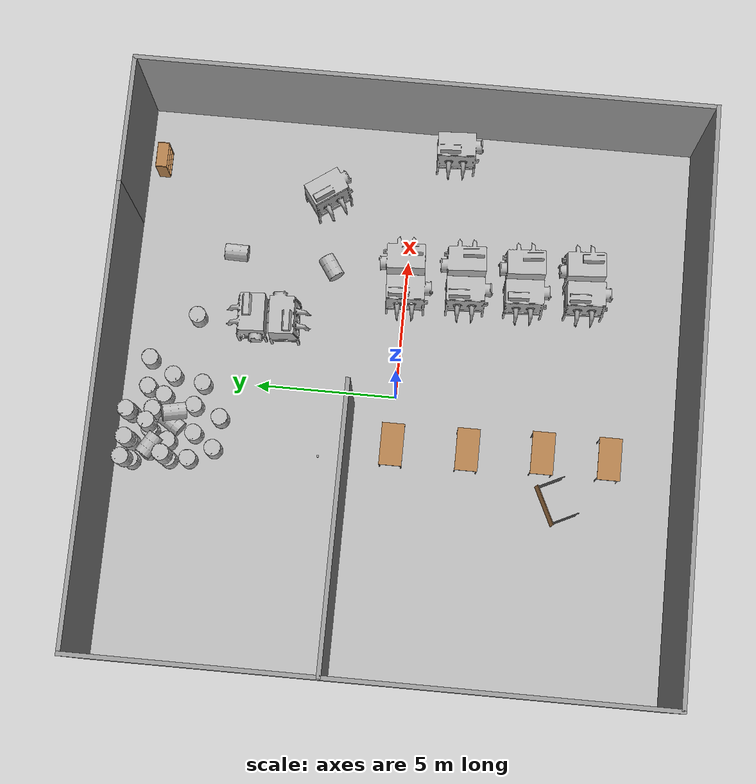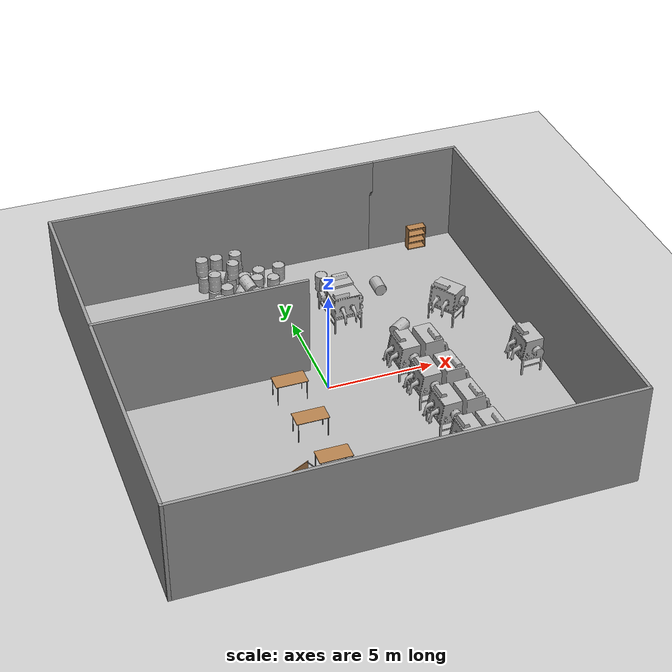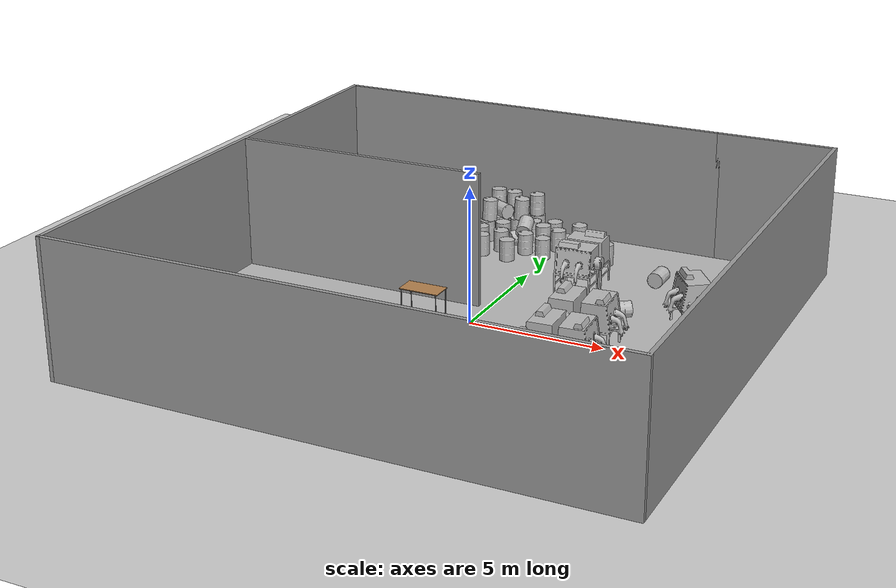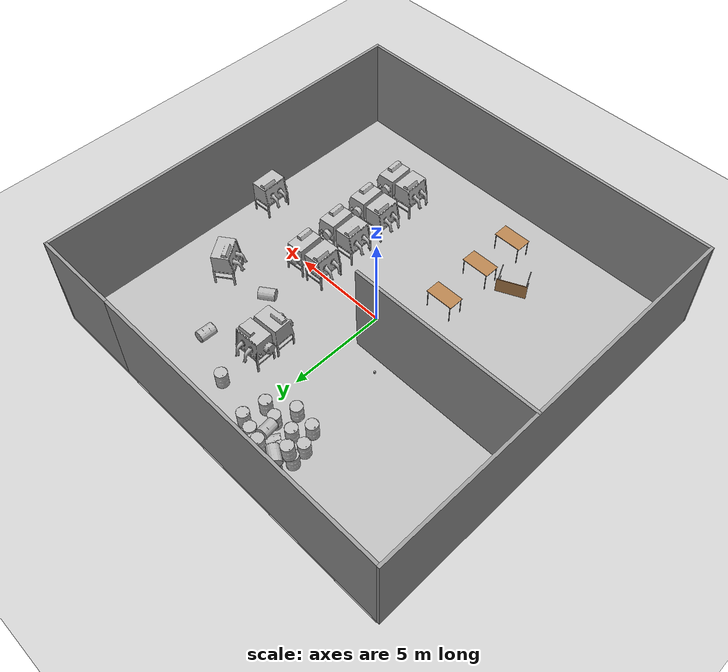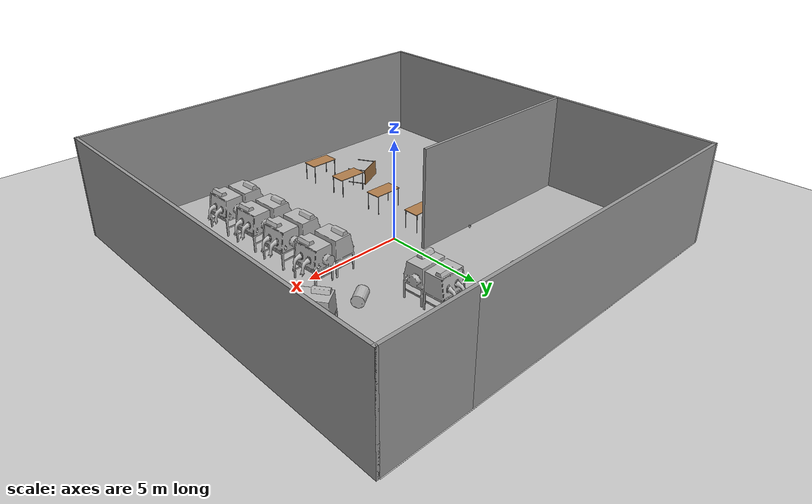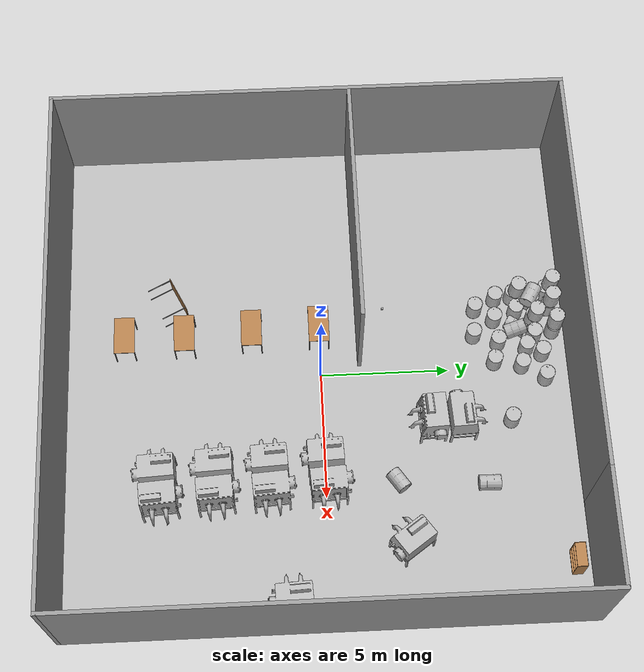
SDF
<sdf version="1.7">
 <world name="default">
  <model name="ground_plane">
   <static>1</static>
   <link name="link">
    <collision name="collision">
     <geometry><plane><normal>0 0 1</normal><size>100 100</size></plane></geometry>
     <surface><friction><ode><mu>100</mu><mu2>50</mu2></ode></friction></surface>
    </collision>
    <visual name="visual">
     <cast_shadows>0</cast_shadows>
     <geometry><plane><normal>0 0 1</normal><size>100 100</size></plane></geometry>
     <material>
      <script><uri>file://media/materials/scripts/gazebo.material</uri><name>Gazebo/Grey</name></script>
     </material>
    </visual>
   </link>
  </model>
  <model name="table_clone_1">
   <static>1</static>
   <link name="link">
    <collision name="surface">
     <pose>0 0 1 0 -0 0</pose>
     <geometry><box><size>1.5 0.8 0.03</size></box></geometry>
     <surface><friction><ode><mu>0.6</mu><mu2>0.6</mu2></ode></friction></surface>
    </collision>
    <visual name="visual1">
     <pose>0 0 1 0 -0 0</pose>
     <geometry><box><size>1.5 0.8 0.03</size></box></geometry>
     <material>
      <script><uri>file://media/materials/scripts/gazebo.material</uri><name>Gazebo/Wood</name></script>
     </material>
    </visual>
    <collision name="front_left_leg">
     <pose>0.68 0.38 0.5 0 -0 0</pose>
     <geometry><cylinder><radius>0.02</radius><length>1</length></cylinder></geometry>
    </collision>
    <visual name="front_left_leg">
     <pose>0.68 0.38 0.5 0 -0 0</pose>
     <geometry><cylinder><radius>0.02</radius><length>1</length></cylinder></geometry>
     <material>
      <script><uri>file://media/materials/scripts/gazebo.material</uri><name>Gazebo/Grey</name></script>
     </material>
    </visual>
    <collision name="front_right_leg">
     <pose>0.68 -0.38 0.5 0 -0 0</pose>
     <geometry><cylinder><radius>0.02</radius><length>1</length></cylinder></geometry>
    </collision>
    <visual name="front_right_leg">
     <pose>0.68 -0.38 0.5 0 -0 0</pose>
     <geometry><cylinder><radius>0.02</radius><length>1</length></cylinder></geometry>
     <material>
      <script><uri>file://media/materials/scripts/gazebo.material</uri><name>Gazebo/Grey</name></script>
     </material>
    </visual>
    <collision name="back_right_leg">
     <pose>-0.68 -0.38 0.5 0 -0 0</pose>
     <geometry><cylinder><radius>0.02</radius><length>1</length></cylinder></geometry>
    </collision>
    <visual name="back_right_leg">
     <pose>-0.68 -0.38 0.5 0 -0 0</pose>
     <geometry><cylinder><radius>0.02</radius><length>1</length></cylinder></geometry>
     <material>
      <script><uri>file://media/materials/scripts/gazebo.material</uri><name>Gazebo/Grey</name></script>
     </material>
    </visual>
    <collision name="back_left_leg">
     <pose>-0.68 0.38 0.5 0 -0 0</pose>
     <geometry><cylinder><radius>0.02</radius><length>1</length></cylinder></geometry>
    </collision>
    <visual name="back_left_leg">
     <pose>-0.68 0.38 0.5 0 -0 0</pose>
     <geometry><cylinder><radius>0.02</radius><length>1</length></cylinder></geometry>
     <material>
      <script><uri>file://media/materials/scripts/gazebo.material</uri><name>Gazebo/Grey</name></script>
     </material>
    </visual>
   </link>
   <pose>-1.76077 -2.66222 0 0 -0 0</pose>
  </model>
  <model name="table_clone_5">
   <static>1</static>
   <link name="link">
    <collision name="surface">
     <pose>0 0 1 0 -0 0</pose>
     <geometry><box><size>1.5 0.8 0.03</size></box></geometry>
     <surface><friction><ode><mu>0.6</mu><mu2>0.6</mu2></ode></friction></surface>
    </collision>
    <visual name="visual1">
     <pose>0 0 1 0 -0 0</pose>
     <geometry><box><size>1.5 0.8 0.03</size></box></geometry>
     <material>
      <script><uri>file://media/materials/scripts/gazebo.material</uri><name>Gazebo/Wood</name></script>
     </material>
    </visual>
    <collision name="front_left_leg">
     <pose>0.68 0.38 0.5 0 -0 0</pose>
     <geometry><cylinder><radius>0.02</radius><length>1</length></cylinder></geometry>
    </collision>
    <visual name="front_left_leg">
     <pose>0.68 0.38 0.5 0 -0 0</pose>
     <geometry><cylinder><radius>0.02</radius><length>1</length></cylinder></geometry>
     <material>
      <script><uri>file://media/materials/scripts/gazebo.material</uri><name>Gazebo/Grey</name></script>
     </material>
    </visual>
    <collision name="front_right_leg">
     <pose>0.68 -0.38 0.5 0 -0 0</pose>
     <geometry><cylinder><radius>0.02</radius><length>1</length></cylinder></geometry>
    </collision>
    <visual name="front_right_leg">
     <pose>0.68 -0.38 0.5 0 -0 0</pose>
     <geometry><cylinder><radius>0.02</radius><length>1</length></cylinder></geometry>
     <material>
      <script><uri>file://media/materials/scripts/gazebo.material</uri><name>Gazebo/Grey</name></script>
     </material>
    </visual>
    <collision name="back_right_leg">
     <pose>-0.68 -0.38 0.5 0 -0 0</pose>
     <geometry><cylinder><radius>0.02</radius><length>1</length></cylinder></geometry>
    </collision>
    <visual name="back_right_leg">
     <pose>-0.68 -0.38 0.5 0 -0 0</pose>
     <geometry><cylinder><radius>0.02</radius><length>1</length></cylinder></geometry>
     <material>
      <script><uri>file://media/materials/scripts/gazebo.material</uri><name>Gazebo/Grey</name></script>
     </material>
    </visual>
    <collision name="back_left_leg">
     <pose>-0.68 0.38 0.5 0 -0 0</pose>
     <geometry><cylinder><radius>0.02</radius><length>1</length></cylinder></geometry>
    </collision>
    <visual name="back_left_leg">
     <pose>-0.68 0.38 0.5 0 -0 0</pose>
     <geometry><cylinder><radius>0.02</radius><length>1</length></cylinder></geometry>
     <material>
      <script><uri>file://media/materials/scripts/gazebo.material</uri><name>Gazebo/Grey</name></script>
     </material>
    </visual>
   </link>
   <pose>-1.65 -5.29392 0 0 -0 0</pose>
  </model>
  <model name="table_clone_9">
   <static>1</static>
   <link name="link">
    <collision name="surface">
     <pose>0 0 1 0 -0 0</pose>
     <geometry><box><size>1.5 0.8 0.03</size></box></geometry>
     <surface><friction><ode><mu>0.6</mu><mu2>0.6</mu2></ode></friction></surface>
    </collision>
    <visual name="visual1">
     <pose>0 0 1 0 -0 0</pose>
     <geometry><box><size>1.5 0.8 0.03</size></box></geometry>
     <material>
      <script><uri>file://media/materials/scripts/gazebo.material</uri><name>Gazebo/Wood</name></script>
     </material>
    </visual>
    <collision name="front_left_leg">
     <pose>0.68 0.38 0.5 0 -0 0</pose>
     <geometry><cylinder><radius>0.02</radius><length>1</length></cylinder></geometry>
    </collision>
    <visual name="front_left_leg">
     <pose>0.68 0.38 0.5 0 -0 0</pose>
     <geometry><cylinder><radius>0.02</radius><length>1</length></cylinder></geometry>
     <material>
      <script><uri>file://media/materials/scripts/gazebo.material</uri><name>Gazebo/Grey</name></script>
     </material>
    </visual>
    <collision name="front_right_leg">
     <pose>0.68 -0.38 0.5 0 -0 0</pose>
     <geometry><cylinder><radius>0.02</radius><length>1</length></cylinder></geometry>
    </collision>
    <visual name="front_right_leg">
     <pose>0.68 -0.38 0.5 0 -0 0</pose>
     <geometry><cylinder><radius>0.02</radius><length>1</length></cylinder></geometry>
     <material>
      <script><uri>file://media/materials/scripts/gazebo.material</uri><name>Gazebo/Grey</name></script>
     </material>
    </visual>
    <collision name="back_right_leg">
     <pose>-0.68 -0.38 0.5 0 -0 0</pose>
     <geometry><cylinder><radius>0.02</radius><length>1</length></cylinder></geometry>
    </collision>
    <visual name="back_right_leg">
     <pose>-0.68 -0.38 0.5 0 -0 0</pose>
     <geometry><cylinder><radius>0.02</radius><length>1</length></cylinder></geometry>
     <material>
      <script><uri>file://media/materials/scripts/gazebo.material</uri><name>Gazebo/Grey</name></script>
     </material>
    </visual>
    <collision name="back_left_leg">
     <pose>-0.68 0.38 0.5 0 -0 0</pose>
     <geometry><cylinder><radius>0.02</radius><length>1</length></cylinder></geometry>
    </collision>
    <visual name="back_left_leg">
     <pose>-0.68 0.38 0.5 0 -0 0</pose>
     <geometry><cylinder><radius>0.02</radius><length>1</length></cylinder></geometry>
     <material>
      <script><uri>file://media/materials/scripts/gazebo.material</uri><name>Gazebo/Grey</name></script>
     </material>
    </visual>
   </link>
   <pose>-1.64837 -7.6314 0 0 -0 0</pose>
  </model>
  <model name="table_clone_13">
   <static>1</static>
   <link name="link">
    <collision name="surface">
     <pose>0 0 1 0 -0 0</pose>
     <geometry><box><size>1.5 0.8 0.03</size></box></geometry>
     <surface><friction><ode><mu>0.6</mu><mu2>0.6</mu2></ode></friction></surface>
    </collision>
    <visual name="visual1">
     <pose>0 0 1 0 -0 0</pose>
     <geometry><box><size>1.5 0.8 0.03</size></box></geometry>
     <material>
      <script><uri>file://media/materials/scripts/gazebo.material</uri><name>Gazebo/Wood</name></script>
     </material>
    </visual>
    <collision name="front_left_leg">
     <pose>0.68 0.38 0.5 0 -0 0</pose>
     <geometry><cylinder><radius>0.02</radius><length>1</length></cylinder></geometry>
    </collision>
    <visual name="front_left_leg">
     <pose>0.68 0.38 0.5 0 -0 0</pose>
     <geometry><cylinder><radius>0.02</radius><length>1</length></cylinder></geometry>
     <material>
      <script><uri>file://media/materials/scripts/gazebo.material</uri><name>Gazebo/Grey</name></script>
     </material>
    </visual>
    <collision name="front_right_leg">
     <pose>0.68 -0.38 0.5 0 -0 0</pose>
     <geometry><cylinder><radius>0.02</radius><length>1</length></cylinder></geometry>
    </collision>
    <visual name="front_right_leg">
     <pose>0.68 -0.38 0.5 0 -0 0</pose>
     <geometry><cylinder><radius>0.02</radius><length>1</length></cylinder></geometry>
     <material>
      <script><uri>file://media/materials/scripts/gazebo.material</uri><name>Gazebo/Grey</name></script>
     </material>
    </visual>
    <collision name="back_right_leg">
     <pose>-0.68 -0.38 0.5 0 -0 0</pose>
     <geometry><cylinder><radius>0.02</radius><length>1</length></cylinder></geometry>
    </collision>
    <visual name="back_right_leg">
     <pose>-0.68 -0.38 0.5 0 -0 0</pose>
     <geometry><cylinder><radius>0.02</radius><length>1</length></cylinder></geometry>
     <material>
      <script><uri>file://media/materials/scripts/gazebo.material</uri><name>Gazebo/Grey</name></script>
     </material>
    </visual>
    <collision name="back_left_leg">
     <pose>-0.68 0.38 0.5 0 -0 0</pose>
     <geometry><cylinder><radius>0.02</radius><length>1</length></cylinder></geometry>
    </collision>
    <visual name="back_left_leg">
     <pose>-0.68 0.38 0.5 0 -0 0</pose>
     <geometry><cylinder><radius>0.02</radius><length>1</length></cylinder></geometry>
     <material>
      <script><uri>file://media/materials/scripts/gazebo.material</uri><name>Gazebo/Grey</name></script>
     </material>
    </visual>
   </link>
   <pose>-1.8157 -0.014208 0 0 -0 0</pose>
  </model>
  <model name="bookshelf">
   <static>1</static>
   <link name="link">
    <inertial><mass>1</mass></inertial>
    <collision name="back">
     <pose>0 0.005 0.6 0 -0 0</pose>
     <geometry><box><size>0.9 0.01 1.2</size></box></geometry>
    </collision>
    <visual name="visual1">
     <pose>0 0.005 0.6 0 -0 0</pose>
     <geometry><box><size>0.9 0.01 1.2</size></box></geometry>
     <material>
      <script><uri>file://media/materials/scripts/gazebo.material</uri><name>Gazebo/Wood</name></script>
     </material>
    </visual>
    <collision name="left_side">
     <pose>0.45 -0.195 0.6 0 -0 0</pose>
     <geometry><box><size>0.02 0.4 1.2</size></box></geometry>
    </collision>
    <visual name="visual2">
     <pose>0.45 -0.195 0.6 0 -0 0</pose>
     <geometry><box><size>0.02 0.4 1.2</size></box></geometry>
     <material>
      <script><uri>file://media/materials/scripts/gazebo.material</uri><name>Gazebo/Wood</name></script>
     </material>
    </visual>
    <collision name="right_side">
     <pose>-0.45 -0.195 0.6 0 -0 0</pose>
     <geometry><box><size>0.02 0.4 1.2</size></box></geometry>
    </collision>
    <visual name="visual3">
     <pose>-0.45 -0.195 0.6 0 -0 0</pose>
     <geometry><box><size>0.02 0.4 1.2</size></box></geometry>
     <material>
      <script><uri>file://media/materials/scripts/gazebo.material</uri><name>Gazebo/Wood</name></script>
     </material>
    </visual>
    <collision name="bottom">
     <pose>0 -0.195 0.03 0 -0 0</pose>
     <geometry><box><size>0.88 0.4 0.06</size></box></geometry>
    </collision>
    <visual name="visual4">
     <pose>0 -0.195 0.03 0 -0 0</pose>
     <geometry><box><size>0.88 0.4 0.06</size></box></geometry>
     <material>
      <script><uri>file://media/materials/scripts/gazebo.material</uri><name>Gazebo/Wood</name></script>
     </material>
    </visual>
    <collision name="top">
     <pose>0 -0.195 1.19 0 -0 0</pose>
     <geometry><box><size>0.88 0.4 0.02</size></box></geometry>
    </collision>
    <visual name="visual5">
     <pose>0 -0.195 1.19 0 -0 0</pose>
     <geometry><box><size>0.88 0.4 0.02</size></box></geometry>
     <material>
      <script><uri>file://media/materials/scripts/gazebo.material</uri><name>Gazebo/Wood</name></script>
     </material>
    </visual>
    <collision name="low_shelf">
     <pose>0 -0.195 0.43 0 -0 0</pose>
     <geometry><box><size>0.88 0.4 0.02</size></box></geometry>
    </collision>
    <visual name="visual6">
     <pose>0 -0.195 0.43 0 -0 0</pose>
     <geometry><box><size>0.88 0.4 0.02</size></box></geometry>
     <material>
      <script><uri>file://media/materials/scripts/gazebo.material</uri><name>Gazebo/Wood</name></script>
     </material>
    </visual>
    <collision name="high_shelf">
     <pose>0 -0.195 0.8 0 -0 0</pose>
     <geometry><box><size>0.88 0.4 0.02</size></box></geometry>
    </collision>
    <visual name="visual7">
     <pose>0 -0.195 0.8 0 -0 0</pose>
     <geometry><box><size>0.88 0.4 0.02</size></box></geometry>
     <material>
      <script><uri>file://media/materials/scripts/gazebo.material</uri><name>Gazebo/Wood</name></script>
     </material>
    </visual>
   </link>
   <pose>7.91502 9.37231 0 0 -0 0</pose>
  </model>
  <model name="coffee_box">
   <link name="link_0">
    <visual name="visual">
     <pose>0 0 0.06 0 -0 0</pose>
     <geometry><cylinder><radius>0.04</radius><length>0.12</length></cylinder></geometry>
     <material>
      <script>
       <uri>model://coffee_box/materials/scripts</uri>
       <uri>model://coffee_box/materials/textures</uri>
       <name>coffee_pat</name>
      </script>
     </material>
    </visual>
    <collision name="collision">
     <geometry><cylinder><radius>0.04</radius><length>0.12</length></cylinder></geometry>
    </collision>
   </link>
   <static>1</static>
   <pose>-2.4409 2.53697 0.722102 0 -0 0</pose>
  </model>
  <model name="toxic_barrel_clone_0">
   <static>0</static>
   <link name="link">
    <visual name="visual">
     <geometry><mesh><uri>model://toxic_barrel/meshes/barrel_red.obj</uri></mesh></geometry>
    </visual>
    <collision name="collision">
     <geometry><mesh><uri>model://toxic_barrel/meshes/barrel_red.obj</uri></mesh></geometry>
    </collision>
    <inertial>
     <inertia><ixx>1</ixx><ixy>0</ixy><ixz>0</ixz><iyy>1</iyy><iyz>0</iyz><izz>1</izz></inertia>
     <mass>1</mass>
    </inertial>
   </link>
   <pose>-3.11895 9.08494 0.426976 1.5708 -1e-06 0.013664</pose>
  </model>
  <model name="toxic_barrel_clone_1">
   <static>0</static>
   <link name="link">
    <visual name="visual">
     <geometry><mesh><uri>model://toxic_barrel/meshes/barrel_red.obj</uri></mesh></geometry>
    </visual>
    <collision name="collision">
     <geometry><mesh><uri>model://toxic_barrel/meshes/barrel_red.obj</uri></mesh></geometry>
    </collision>
    <inertial>
     <inertia><ixx>1</ixx><ixy>0</ixy><ixz>0</ixz><iyy>1</iyy><iyz>0</iyz><izz>1</izz></inertia>
     <mass>1</mass>
    </inertial>
   </link>
   <pose>-2.44971 9.17143 0.427263 1.56989 -3.8e-05 0.118357</pose>
  </model>
  <model name="toxic_barrel_clone_2">
   <static>0</static>
   <link name="link">
    <visual name="visual">
     <geometry><mesh><uri>model://toxic_barrel/meshes/barrel_red.obj</uri></mesh></geometry>
    </visual>
    <collision name="collision">
     <geometry><mesh><uri>model://toxic_barrel/meshes/barrel_red.obj</uri></mesh></geometry>
    </collision>
    <inertial>
     <inertia><ixx>1</ixx><ixy>0</ixy><ixz>0</ixz><iyy>1</iyy><iyz>0</iyz><izz>1</izz></inertia>
     <mass>1</mass>
    </inertial>
   </link>
   <pose>-1.44221 9.26666 0.427 1.57079 -1e-06 0.689921</pose>
  </model>
  <model name="toxic_barrel_clone_5">
   <static>0</static>
   <link name="link">
    <visual name="visual">
     <geometry><mesh><uri>model://toxic_barrel/meshes/barrel_red.obj</uri></mesh></geometry>
    </visual>
    <collision name="collision">
     <geometry><mesh><uri>model://toxic_barrel/meshes/barrel_red.obj</uri></mesh></geometry>
    </collision>
    <inertial>
     <inertia><ixx>1</ixx><ixy>0</ixy><ixz>0</ixz><iyy>1</iyy><iyz>0</iyz><izz>1</izz></inertia>
     <mass>1</mass>
    </inertial>
   </link>
   <pose>-2.72967 8.51557 0.427 1.57079 -0 -0.016233</pose>
  </model>
  <model name="toxic_barrel_clone_6">
   <static>0</static>
   <link name="link">
    <visual name="visual">
     <geometry><mesh><uri>model://toxic_barrel/meshes/barrel_red.obj</uri></mesh></geometry>
    </visual>
    <collision name="collision">
     <geometry><mesh><uri>model://toxic_barrel/meshes/barrel_red.obj</uri></mesh></geometry>
    </collision>
    <inertial>
     <inertia><ixx>1</ixx><ixy>0</ixy><ixz>0</ixz><iyy>1</iyy><iyz>0</iyz><izz>1</izz></inertia>
     <mass>1</mass>
    </inertial>
   </link>
   <pose>-1.99011 8.51994 0.426995 1.57077 -1.7e-05 -0.223908</pose>
  </model>
  <model name="toxic_barrel_clone_7">
   <static>0</static>
   <link name="link">
    <visual name="visual">
     <geometry><mesh><uri>model://toxic_barrel/meshes/barrel_red.obj</uri></mesh></geometry>
    </visual>
    <collision name="collision">
     <geometry><mesh><uri>model://toxic_barrel/meshes/barrel_red.obj</uri></mesh></geometry>
    </collision>
    <inertial>
     <inertia><ixx>1</ixx><ixy>0</ixy><ixz>0</ixz><iyy>1</iyy><iyz>0</iyz><izz>1</izz></inertia>
     <mass>1</mass>
    </inertial>
   </link>
   <pose>-1.2652 8.50018 0.427001 1.5708 -0 0.595891</pose>
  </model>
  <model name="toxic_barrel_clone_8">
   <static>0</static>
   <link name="link">
    <visual name="visual">
     <geometry><mesh><uri>model://toxic_barrel/meshes/barrel_red.obj</uri></mesh></geometry>
    </visual>
    <collision name="collision">
     <geometry><mesh><uri>model://toxic_barrel/meshes/barrel_red.obj</uri></mesh></geometry>
    </collision>
    <inertial>
     <inertia><ixx>1</ixx><ixy>0</ixy><ixz>0</ixz><iyy>1</iyy><iyz>0</iyz><izz>1</izz></inertia>
     <mass>1</mass>
    </inertial>
   </link>
   <pose>-2.33046 7.86105 0.426941 1.5708 1.2e-05 -0.427893</pose>
  </model>
  <model name="toxic_barrel_clone_9">
   <static>0</static>
   <link name="link">
    <visual name="visual">
     <geometry><mesh><uri>model://toxic_barrel/meshes/barrel_red.obj</uri></mesh></geometry>
    </visual>
    <collision name="collision">
     <geometry><mesh><uri>model://toxic_barrel/meshes/barrel_red.obj</uri></mesh></geometry>
    </collision>
    <inertial>
     <inertia><ixx>1</ixx><ixy>0</ixy><ixz>0</ixz><iyy>1</iyy><iyz>0</iyz><izz>1</izz></inertia>
     <mass>1</mass>
    </inertial>
   </link>
   <pose>-2.97407 7.77648 0.426958 1.5708 6e-06 0.115678</pose>
  </model>
  <model name="toxic_barrel_clone_12">
   <static>0</static>
   <link name="link">
    <visual name="visual">
     <geometry><mesh><uri>model://toxic_barrel/meshes/barrel_red.obj</uri></mesh></geometry>
    </visual>
    <collision name="collision">
     <geometry><mesh><uri>model://toxic_barrel/meshes/barrel_red.obj</uri></mesh></geometry>
    </collision>
    <inertial>
     <inertia><ixx>1</ixx><ixy>0</ixy><ixz>0</ixz><iyy>1</iyy><iyz>0</iyz><izz>1</izz></inertia>
     <mass>1</mass>
    </inertial>
   </link>
   <pose>-1.65316 7.81934 0.306104 -2e-06 -0.196384 -0.582579</pose>
  </model>
  <model name="toxic_barrel_clone_12_clone_clone_0">
   <static>0</static>
   <link name="link">
    <visual name="visual">
     <geometry><mesh><uri>model://toxic_barrel/meshes/barrel_red.obj</uri></mesh></geometry>
    </visual>
    <collision name="collision">
     <geometry><mesh><uri>model://toxic_barrel/meshes/barrel_red.obj</uri></mesh></geometry>
    </collision>
    <inertial>
     <inertia><ixx>1</ixx><ixy>0</ixy><ixz>0</ixz><iyy>1</iyy><iyz>0</iyz><izz>1</izz></inertia>
     <mass>1</mass>
    </inertial>
   </link>
   <pose>-2.45331 9.22448 1.25815 1.55945 -0.01027 -0.643175</pose>
  </model>
  <model name="toxic_barrel_clone_12_clone_clone_2">
   <static>0</static>
   <link name="link">
    <visual name="visual">
     <geometry><mesh><uri>model://toxic_barrel/meshes/barrel_red.obj</uri></mesh></geometry>
    </visual>
    <collision name="collision">
     <geometry><mesh><uri>model://toxic_barrel/meshes/barrel_red.obj</uri></mesh></geometry>
    </collision>
    <inertial>
     <inertia><ixx>1</ixx><ixy>0</ixy><ixz>0</ixz><iyy>1</iyy><iyz>0</iyz><izz>1</izz></inertia>
     <mass>1</mass>
    </inertial>
   </link>
   <pose>-1.48617 9.28186 1.25822 1.57151 -0.003325 -0.521815</pose>
  </model>
  <model name="toxic_barrel_clone_12_clone_clone_0_clone_0">
   <static>0</static>
   <link name="link">
    <visual name="visual">
     <geometry><mesh><uri>model://toxic_barrel/meshes/barrel_red.obj</uri></mesh></geometry>
    </visual>
    <collision name="collision">
     <geometry><mesh><uri>model://toxic_barrel/meshes/barrel_red.obj</uri></mesh></geometry>
    </collision>
    <inertial>
     <inertia><ixx>1</ixx><ixy>0</ixy><ixz>0</ixz><iyy>1</iyy><iyz>0</iyz><izz>1</izz></inertia>
     <mass>1</mass>
    </inertial>
   </link>
   <pose>-3.15527 9.2612 1.25365 1.55297 -0.050357 -1.02175</pose>
  </model>
  <model name="toxic_barrel_clone_12_clone_clone_2_clone">
   <static>0</static>
   <link name="link">
    <visual name="visual">
     <geometry><mesh><uri>model://toxic_barrel/meshes/barrel_red.obj</uri></mesh></geometry>
    </visual>
    <collision name="collision">
     <geometry><mesh><uri>model://toxic_barrel/meshes/barrel_red.obj</uri></mesh></geometry>
    </collision>
    <inertial>
     <inertia><ixx>1</ixx><ixy>0</ixy><ixz>0</ixz><iyy>1</iyy><iyz>0</iyz><izz>1</izz></inertia>
     <mass>1</mass>
    </inertial>
   </link>
   <pose>-0.732079 8.15352 0.426338 -1.56942 0.003864 -2.97299</pose>
  </model>
  <model name="toxic_barrel_clone_12_clone_clone_2_clone_0">
   <static>0</static>
   <link name="link">
    <visual name="visual">
     <geometry><mesh><uri>model://toxic_barrel/meshes/barrel_red.obj</uri></mesh></geometry>
    </visual>
    <collision name="collision">
     <geometry><mesh><uri>model://toxic_barrel/meshes/barrel_red.obj</uri></mesh></geometry>
    </collision>
    <inertial>
     <inertia><ixx>1</ixx><ixy>0</ixy><ixz>0</ixz><iyy>1</iyy><iyz>0</iyz><izz>1</izz></inertia>
     <mass>1</mass>
    </inertial>
   </link>
   <pose>-1.83827 8.54585 1.25472 1.53816 0.036901 -0.557607</pose>
  </model>
  <model name="toxic_barrel_clone_12_clone_clone_2_clone_1">
   <static>0</static>
   <link name="link">
    <visual name="visual">
     <geometry><mesh><uri>model://toxic_barrel/meshes/barrel_red.obj</uri></mesh></geometry>
    </visual>
    <collision name="collision">
     <geometry><mesh><uri>model://toxic_barrel/meshes/barrel_red.obj</uri></mesh></geometry>
    </collision>
    <inertial>
     <inertia><ixx>1</ixx><ixy>0</ixy><ixz>0</ixz><iyy>1</iyy><iyz>0</iyz><izz>1</izz></inertia>
     <mass>1</mass>
    </inertial>
   </link>
   <pose>-2.62425 8.39721 1.13752 3.1052 1.11039 0.997897</pose>
  </model>
  <model name="toxic_barrel_clone_12_clone_clone_2_clone_7">
   <static>0</static>
   <link name="link">
    <visual name="visual">
     <geometry><mesh><uri>model://toxic_barrel/meshes/barrel_red.obj</uri></mesh></geometry>
    </visual>
    <collision name="collision">
     <geometry><mesh><uri>model://toxic_barrel/meshes/barrel_red.obj</uri></mesh></geometry>
    </collision>
    <inertial>
     <inertia><ixx>1</ixx><ixy>0</ixy><ixz>0</ixz><iyy>1</iyy><iyz>0</iyz><izz>1</izz></inertia>
     <mass>1</mass>
    </inertial>
   </link>
   <pose>-2.91629 7.89199 1.25562 1.52392 0.015244 -0.159662</pose>
  </model>
  <model name="toxic_barrel_clone_12_clone_clone_2_clone_8">
   <static>0</static>
   <link name="link">
    <visual name="visual">
     <geometry><mesh><uri>model://toxic_barrel/meshes/barrel_red.obj</uri></mesh></geometry>
    </visual>
    <collision name="collision">
     <geometry><mesh><uri>model://toxic_barrel/meshes/barrel_red.obj</uri></mesh></geometry>
    </collision>
    <inertial>
     <inertia><ixx>1</ixx><ixy>0</ixy><ixz>0</ixz><iyy>1</iyy><iyz>0</iyz><izz>1</izz></inertia>
     <mass>1</mass>
    </inertial>
   </link>
   <pose>-1.32851 7.72263 0.814301 -0.248819 0.272996 -2.97275</pose>
  </model>
  <model name="toxic_barrel_clone_7_clone">
   <static>0</static>
   <link name="link">
    <visual name="visual">
     <geometry><mesh><uri>model://toxic_barrel/meshes/barrel_red.obj</uri></mesh></geometry>
    </visual>
    <collision name="collision">
     <geometry><mesh><uri>model://toxic_barrel/meshes/barrel_red.obj</uri></mesh></geometry>
    </collision>
    <inertial>
     <inertia><ixx>1</ixx><ixy>0</ixy><ixz>0</ixz><iyy>1</iyy><iyz>0</iyz><izz>1</izz></inertia>
     <mass>1</mass>
    </inertial>
   </link>
   <pose>-0.482166 8.75617 0.427 1.5708 -0 0.749746</pose>
  </model>
  <model name="toxic_barrel_clone_7_clone_0">
   <static>0</static>
   <link name="link">
    <visual name="visual">
     <geometry><mesh><uri>model://toxic_barrel/meshes/barrel_red.obj</uri></mesh></geometry>
    </visual>
    <collision name="collision">
     <geometry><mesh><uri>model://toxic_barrel/meshes/barrel_red.obj</uri></mesh></geometry>
    </collision>
    <inertial>
     <inertia><ixx>1</ixx><ixy>0</ixy><ixz>0</ixz><iyy>1</iyy><iyz>0</iyz><izz>1</izz></inertia>
     <mass>1</mass>
    </inertial>
   </link>
   <pose>0.005107 7.91273 0.427001 1.5708 -3e-06 0.475239</pose>
  </model>
  <model name="toxic_barrel_clone_7_clone_1">
   <static>0</static>
   <link name="link">
    <visual name="visual">
     <geometry><mesh><uri>model://toxic_barrel/meshes/barrel_red.obj</uri></mesh></geometry>
    </visual>
    <collision name="collision">
     <geometry><mesh><uri>model://toxic_barrel/meshes/barrel_red.obj</uri></mesh></geometry>
    </collision>
    <inertial>
     <inertia><ixx>1</ixx><ixy>0</ixy><ixz>0</ixz><iyy>1</iyy><iyz>0</iyz><izz>1</izz></inertia>
     <mass>1</mass>
    </inertial>
   </link>
   <pose>0.549056 8.80007 0.426994 1.57081 3e-06 -0.072835</pose>
  </model>
  <model name="toxic_barrel_clone_7_clone_0_clone_0">
   <static>0</static>
   <link name="link">
    <visual name="visual">
     <geometry><mesh><uri>model://toxic_barrel/meshes/barrel_red.obj</uri></mesh></geometry>
    </visual>
    <collision name="collision">
     <geometry><mesh><uri>model://toxic_barrel/meshes/barrel_red.obj</uri></mesh></geometry>
    </collision>
    <inertial>
     <inertia><ixx>1</ixx><ixy>0</ixy><ixz>0</ixz><iyy>1</iyy><iyz>0</iyz><izz>1</izz></inertia>
     <mass>1</mass>
    </inertial>
   </link>
   <pose>-2.91122 7.07577 0.426992 1.5708 -2e-06 -0.082729</pose>
  </model>
  <model name="toxic_barrel_clone_7_clone_0_clone_1">
   <static>0</static>
   <link name="link">
    <visual name="visual">
     <geometry><mesh><uri>model://toxic_barrel/meshes/barrel_red.obj</uri></mesh></geometry>
    </visual>
    <collision name="collision">
     <geometry><mesh><uri>model://toxic_barrel/meshes/barrel_red.obj</uri></mesh></geometry>
    </collision>
    <inertial>
     <inertia><ixx>1</ixx><ixy>0</ixy><ixz>0</ixz><iyy>1</iyy><iyz>0</iyz><izz>1</izz></inertia>
     <mass>1</mass>
    </inertial>
   </link>
   <pose>-2.00095 6.96854 0.427 1.5708 -1e-06 -0.052827</pose>
  </model>
  <model name="toxic_barrel_clone_7_clone_0_clone_2">
   <static>0</static>
   <link name="link">
    <visual name="visual">
     <geometry><mesh><uri>model://toxic_barrel/meshes/barrel_red.obj</uri></mesh></geometry>
    </visual>
    <collision name="collision">
     <geometry><mesh><uri>model://toxic_barrel/meshes/barrel_red.obj</uri></mesh></geometry>
    </collision>
    <inertial>
     <inertia><ixx>1</ixx><ixy>0</ixy><ixz>0</ixz><iyy>1</iyy><iyz>0</iyz><izz>1</izz></inertia>
     <mass>1</mass>
    </inertial>
   </link>
   <pose>-1.01166 7.05851 0.426972 1.57081 6e-06 -0.062458</pose>
  </model>
  <model name="toxic_barrel_clone_7_clone_0_clone_3">
   <static>0</static>
   <link name="link">
    <visual name="visual">
     <geometry><mesh><uri>model://toxic_barrel/meshes/barrel_red.obj</uri></mesh></geometry>
    </visual>
    <collision name="collision">
     <geometry><mesh><uri>model://toxic_barrel/meshes/barrel_red.obj</uri></mesh></geometry>
    </collision>
    <inertial>
     <inertia><ixx>1</ixx><ixy>0</ixy><ixz>0</ixz><iyy>1</iyy><iyz>0</iyz><izz>1</izz></inertia>
     <mass>1</mass>
    </inertial>
   </link>
   <pose>-0.192775 6.84339 0.427001 1.5708 -5e-06 -0.080461</pose>
  </model>
  <model name="toxic_barrel_clone_7_clone_0_clone_4">
   <static>0</static>
   <link name="link">
    <visual name="visual">
     <geometry><mesh><uri>model://toxic_barrel/meshes/barrel_red.obj</uri></mesh></geometry>
    </visual>
    <collision name="collision">
     <geometry><mesh><uri>model://toxic_barrel/meshes/barrel_red.obj</uri></mesh></geometry>
    </collision>
    <inertial>
     <inertia><ixx>1</ixx><ixy>0</ixy><ixz>0</ixz><iyy>1</iyy><iyz>0</iyz><izz>1</izz></inertia>
     <mass>1</mass>
    </inertial>
   </link>
   <pose>-1.36468 6.11335 0.426369 -1.57289 0.00368 1.03468</pose>
  </model>
  <model name="toxic_barrel_clone_7_clone_0_clone_5">
   <static>0</static>
   <link name="link">
    <visual name="visual">
     <geometry><mesh><uri>model://toxic_barrel/meshes/barrel_red.obj</uri></mesh></geometry>
    </visual>
    <collision name="collision">
     <geometry><mesh><uri>model://toxic_barrel/meshes/barrel_red.obj</uri></mesh></geometry>
    </collision>
    <inertial>
     <inertia><ixx>1</ixx><ixy>0</ixy><ixz>0</ixz><iyy>1</iyy><iyz>0</iyz><izz>1</izz></inertia>
     <mass>1</mass>
    </inertial>
   </link>
   <pose>-2.4809 6.23998 0.427002 1.5708 -5e-06 -0.108185</pose>
  </model>
  <model name="toxic_barrel_clone_7_clone_0_clone_8">
   <static>0</static>
   <link name="link">
    <visual name="visual">
     <geometry><mesh><uri>model://toxic_barrel/meshes/barrel_red.obj</uri></mesh></geometry>
    </visual>
    <collision name="collision">
     <geometry><mesh><uri>model://toxic_barrel/meshes/barrel_red.obj</uri></mesh></geometry>
    </collision>
    <inertial>
     <inertia><ixx>1</ixx><ixy>0</ixy><ixz>0</ixz><iyy>1</iyy><iyz>0</iyz><izz>1</izz></inertia>
     <mass>1</mass>
    </inertial>
   </link>
   <pose>2.23472 7.30246 0.427001 1.5708 -2e-06 -0.021875</pose>
  </model>
  <model name="glovebox">
   <static>0</static>
   <link name="link">
    <visual name="visual">
     <geometry><mesh><uri>model://glovebox/meshes/glovebox.obj</uri></mesh></geometry>
    </visual>
    <collision name="collision">
     <geometry><mesh><uri>model://glovebox/meshes/glovebox.obj</uri></mesh></geometry>
    </collision>
    <inertial>
     <inertia><ixx>1</ixx><ixy>0</ixy><ixz>0</ixz><iyy>1</iyy><iyz>0</iyz><izz>1</izz></inertia>
     <mass>1</mass>
    </inertial>
   </link>
   <pose>3.94029 -6.35224 2.7e-05 1.57147 -9e-05 -1.52101</pose>
  </model>
  <model name="glovebox_clone">
   <static>0</static>
   <link name="link">
    <visual name="visual">
     <geometry><mesh><uri>model://glovebox/meshes/glovebox.obj</uri></mesh></geometry>
    </visual>
    <collision name="collision">
     <geometry><mesh><uri>model://glovebox/meshes/glovebox.obj</uri></mesh></geometry>
    </collision>
    <inertial>
     <inertia><ixx>1</ixx><ixy>0</ixy><ixz>0</ixz><iyy>1</iyy><iyz>0</iyz><izz>1</izz></inertia>
     <mass>1</mass>
    </inertial>
   </link>
   <pose>3.81718 -4.1924 2.7e-05 1.57147 -9e-05 -1.52102</pose>
  </model>
  <model name="glovebox_clone_0">
   <static>0</static>
   <link name="link">
    <visual name="visual">
     <geometry><mesh><uri>model://glovebox/meshes/glovebox.obj</uri></mesh></geometry>
    </visual>
    <collision name="collision">
     <geometry><mesh><uri>model://glovebox/meshes/glovebox.obj</uri></mesh></geometry>
    </collision>
    <inertial>
     <inertia><ixx>1</ixx><ixy>0</ixy><ixz>0</ixz><iyy>1</iyy><iyz>0</iyz><izz>1</izz></inertia>
     <mass>1</mass>
    </inertial>
   </link>
   <pose>3.73528 -2.11719 -0.000769 1.57084 0.000759 -1.52103</pose>
  </model>
  <model name="glovebox_clone_0_clone">
   <static>0</static>
   <link name="link">
    <visual name="visual">
     <geometry><mesh><uri>model://glovebox/meshes/glovebox.obj</uri></mesh></geometry>
    </visual>
    <collision name="collision">
     <geometry><mesh><uri>model://glovebox/meshes/glovebox.obj</uri></mesh></geometry>
    </collision>
    <inertial>
     <inertia><ixx>1</ixx><ixy>0</ixy><ixz>0</ixz><iyy>1</iyy><iyz>0</iyz><izz>1</izz></inertia>
     <mass>1</mass>
    </inertial>
   </link>
   <pose>3.6021 0.001562 -0.000769 1.57084 0.000759 -1.52103</pose>
  </model>
  <model name="glovebox_clone_0_clone_clone">
   <static>0</static>
   <link name="link">
    <visual name="visual">
     <geometry><mesh><uri>model://glovebox/meshes/glovebox.obj</uri></mesh></geometry>
    </visual>
    <collision name="collision">
     <geometry><mesh><uri>model://glovebox/meshes/glovebox.obj</uri></mesh></geometry>
    </collision>
    <inertial>
     <inertia><ixx>1</ixx><ixy>0</ixy><ixz>0</ixz><iyy>1</iyy><iyz>0</iyz><izz>1</izz></inertia>
     <mass>1</mass>
    </inertial>
   </link>
   <pose>4.83981 0.087046 -0.000172 1.57075 0.000172 1.637</pose>
  </model>
  <model name="glovebox_clone_0_clone_clone_clone">
   <static>0</static>
   <link name="link">
    <visual name="visual">
     <geometry><mesh><uri>model://glovebox/meshes/glovebox.obj</uri></mesh></geometry>
    </visual>
    <collision name="collision">
     <geometry><mesh><uri>model://glovebox/meshes/glovebox.obj</uri></mesh></geometry>
    </collision>
    <inertial>
     <inertia><ixx>1</ixx><ixy>0</ixy><ixz>0</ixz><iyy>1</iyy><iyz>0</iyz><izz>1</izz></inertia>
     <mass>1</mass>
    </inertial>
   </link>
   <pose>4.94112 -2.07351 -0.000548 1.57178 0.000348 1.63699</pose>
  </model>
  <model name="glovebox_clone_0_clone_clone_clone_clone">
   <static>0</static>
   <link name="link">
    <visual name="visual">
     <geometry><mesh><uri>model://glovebox/meshes/glovebox.obj</uri></mesh></geometry>
    </visual>
    <collision name="collision">
     <geometry><mesh><uri>model://glovebox/meshes/glovebox.obj</uri></mesh></geometry>
    </collision>
    <inertial>
     <inertia><ixx>1</ixx><ixy>0</ixy><ixz>0</ixz><iyy>1</iyy><iyz>0</iyz><izz>1</izz></inertia>
     <mass>1</mass>
    </inertial>
   </link>
   <pose>4.99975 -4.16642 -0.000548 1.57178 0.000348 1.63699</pose>
  </model>
  <model name="glovebox_clone_0_clone_clone_clone_clone_clone">
   <static>0</static>
   <link name="link">
    <visual name="visual">
     <geometry><mesh><uri>model://glovebox/meshes/glovebox.obj</uri></mesh></geometry>
    </visual>
    <collision name="collision">
     <geometry><mesh><uri>model://glovebox/meshes/glovebox.obj</uri></mesh></geometry>
    </collision>
    <inertial>
     <inertia><ixx>1</ixx><ixy>0</ixy><ixz>0</ixz><iyy>1</iyy><iyz>0</iyz><izz>1</izz></inertia>
     <mass>1</mass>
    </inertial>
   </link>
   <pose>5.11006 -6.28179 -0.000172 1.57075 0.000172 1.637</pose>
  </model>
  <model name="glovebox_clone_0_clone_clone_clone_0">
   <static>0</static>
   <link name="link">
    <visual name="visual">
     <geometry><mesh><uri>model://glovebox/meshes/glovebox.obj</uri></mesh></geometry>
    </visual>
    <collision name="collision">
     <geometry><mesh><uri>model://glovebox/meshes/glovebox.obj</uri></mesh></geometry>
    </collision>
    <inertial>
     <inertia><ixx>1</ixx><ixy>0</ixy><ixz>0</ixz><iyy>1</iyy><iyz>0</iyz><izz>1</izz></inertia>
     <mass>1</mass>
    </inertial>
   </link>
   <pose>2.28236 4.18069 -0.000548 1.57178 0.000348 0.052121</pose>
  </model>
  <model name="glovebox_clone_0_clone_clone_clone_1">
   <static>0</static>
   <link name="link">
    <visual name="visual">
     <geometry><mesh><uri>model://glovebox/meshes/glovebox.obj</uri></mesh></geometry>
    </visual>
    <collision name="collision">
     <geometry><mesh><uri>model://glovebox/meshes/glovebox.obj</uri></mesh></geometry>
    </collision>
    <inertial>
     <inertia><ixx>1</ixx><ixy>0</ixy><ixz>0</ixz><iyy>1</iyy><iyz>0</iyz><izz>1</izz></inertia>
     <mass>1</mass>
    </inertial>
   </link>
   <pose>2.28265 5.33191 0.000283 1.57189 -3.8e-05 -3.09469</pose>
  </model>
  <model name="Floor_room">
   <link name="main">
    <pose>0 0 0.01 0 -0 0</pose>
    <collision name="main_Collision"><geometry><box><size>20 20 0.001</size></box></geometry></collision>
    <visual name="main_Visual">
     <geometry><box><size>20 20 0.001</size></box></geometry>
     <material>
      <script>
       <uri>model://Floor_room/materials/scripts</uri>
       <uri>model://Floor_room/materials/textures</uri>
       <name>floor_room</name>
      </script>
     </material>
    </visual>
   </link>
   <static>1</static>
   <pose>-0.018733 -0.062325 0 0 -0 0</pose>
  </model>
  <model name="demo_tall_wall">
   <pose>-0.00566 -0.10104 0 0 -0 0</pose>
   <link name="Wall_26">
    <collision name="Wall_26_Collision">
     <geometry><box><size>15.75 0.15 5</size></box></geometry>
     <pose>0 0 2.5 0 -0 0</pose>
    </collision>
    <visual name="Wall_26_Visual">
     <pose>0 0 2.5 0 -0 0</pose>
     <geometry><box><size>15.75 0.15 5</size></box></geometry>
     <material>
      <script><uri>file://media/materials/scripts/gazebo.material</uri><name>Gazebo/Grey</name></script>
      <ambient>1 1 1 1</ambient>
     </material>
     <meta><layer>0</layer></meta>
    </visual>
    <pose>-2.1 9.925 0 0 -0 0</pose>
   </link>
   <link name="Wall_29">
    <collision name="Wall_29_Collision">
     <geometry><box><size>4.5 0.15 5</size></box></geometry>
     <pose>0 0 2.5 0 -0 0</pose>
    </collision>
    <visual name="Wall_29_Visual">
     <pose>0 0 2.5 0 -0 0</pose>
     <geometry><box><size>4.5 0.15 5</size></box></geometry>
     <material>
      <script><uri>file://media/materials/scripts/gazebo.material</uri><name>Gazebo/Grey</name></script>
      <ambient>1 1 1 1</ambient>
     </material>
     <meta><layer>0</layer></meta>
    </visual>
    <pose>7.875 9.925 0 0 -0 0</pose>
   </link>
   <link name="Wall_32">
    <collision name="Wall_32_Collision">
     <geometry><box><size>20 0.15 5</size></box></geometry>
     <pose>0 0 2.5 0 -0 0</pose>
    </collision>
    <visual name="Wall_32_Visual">
     <pose>0 0 2.5 0 -0 0</pose>
     <geometry><box><size>20 0.15 5</size></box></geometry>
     <material>
      <script><uri>file://media/materials/scripts/gazebo.material</uri><name>Gazebo/Grey</name></script>
      <ambient>1 1 1 1</ambient>
     </material>
     <meta><layer>0</layer></meta>
    </visual>
    <pose>10.05 0 0 0 -0 -1.5708</pose>
   </link>
   <link name="Wall_33">
    <collision name="Wall_33_Collision">
     <geometry><box><size>20.25 0.15 5</size></box></geometry>
     <pose>0 0 2.5 0 -0 0</pose>
    </collision>
    <visual name="Wall_33_Visual">
     <pose>0 0 2.5 0 -0 0</pose>
     <geometry><box><size>20.25 0.15 5</size></box></geometry>
     <material>
      <script><uri>file://media/materials/scripts/gazebo.material</uri><name>Gazebo/Grey</name></script>
      <ambient>1 1 1 1</ambient>
     </material>
     <meta><layer>0</layer></meta>
    </visual>
    <pose>-0 -9.925 0 0 -0 3.14159</pose>
   </link>
   <link name="Wall_34">
    <collision name="Wall_34_Collision">
     <geometry><box><size>20 0.15 5</size></box></geometry>
     <pose>0 0 2.5 0 -0 0</pose>
    </collision>
    <visual name="Wall_34_Visual">
     <pose>0 0 2.5 0 -0 0</pose>
     <geometry><box><size>20 0.15 5</size></box></geometry>
     <material>
      <script><uri>file://media/materials/scripts/gazebo.material</uri><name>Gazebo/Grey</name></script>
      <ambient>1 1 1 1</ambient>
     </material>
     <meta><layer>0</layer></meta>
    </visual>
    <pose>-10.05 0 0 0 -0 1.5708</pose>
   </link>
   <link name="Wall_36">
    <collision name="Wall_36_Collision">
     <geometry><box><size>9.75 0.15 5</size></box></geometry>
     <pose>0 0 2.5 0 -0 0</pose>
    </collision>
    <visual name="Wall_36_Visual">
     <pose>0 0 2.5 0 -0 0</pose>
     <geometry><box><size>9.75 0.15 5</size></box></geometry>
     <material>
      <script><uri>file://media/materials/scripts/gazebo.material</uri><name>Gazebo/Grey</name></script>
      <ambient>1 1 1 1</ambient>
     </material>
     <meta><layer>0</layer></meta>
    </visual>
    <pose>-5.222 1.636 0 0 -0 0</pose>
   </link>
   <static>1</static>
  </model>
  <model name="glovebox_clone_0_clone_clone_clone_2">
   <static>0</static>
   <link name="link">
    <visual name="visual">
     <geometry><mesh><uri>model://glovebox/meshes/glovebox.obj</uri></mesh></geometry>
    </visual>
    <collision name="collision">
     <geometry><mesh><uri>model://glovebox/meshes/glovebox.obj</uri></mesh></geometry>
    </collision>
    <inertial>
     <inertia><ixx>1</ixx><ixy>0</ixy><ixz>0</ixz><iyy>1</iyy><iyz>0</iyz><izz>1</izz></inertia>
     <mass>1</mass>
    </inertial>
   </link>
   <pose>7.01599 3.08699 -0.000172 1.57075 0.000172 -0.956519</pose>
  </model>
  <model name="toxic_barrel_clone_7_clone_0_clone_8_clone">
   <static>0</static>
   <link name="link">
    <visual name="visual">
     <geometry><mesh><uri>model://toxic_barrel/meshes/barrel_red.obj</uri></mesh></geometry>
    </visual>
    <collision name="collision">
     <geometry><mesh><uri>model://toxic_barrel/meshes/barrel_red.obj</uri></mesh></geometry>
    </collision>
    <inertial>
     <inertia><ixx>1</ixx><ixy>0</ixy><ixz>0</ixz><iyy>1</iyy><iyz>0</iyz><izz>1</izz></inertia>
     <mass>1</mass>
    </inertial>
   </link>
   <pose>4.76182 6.20994 0.307929 0 -0.557018 -0.016403</pose>
  </model>
  <model name="toxic_barrel_clone_7_clone_0_clone_8_clone_clone">
   <static>0</static>
   <link name="link">
    <visual name="visual">
     <geometry><mesh><uri>model://toxic_barrel/meshes/barrel_red.obj</uri></mesh></geometry>
    </visual>
    <collision name="collision">
     <geometry><mesh><uri>model://toxic_barrel/meshes/barrel_red.obj</uri></mesh></geometry>
    </collision>
    <inertial>
     <inertia><ixx>1</ixx><ixy>0</ixy><ixz>0</ixz><iyy>1</iyy><iyz>0</iyz><izz>1</izz></inertia>
     <mass>1</mass>
    </inertial>
   </link>
   <pose>4.52151 2.75889 0.307658 -0 -0.222842 -0.971293</pose>
  </model>
  <model name="glovebox_clone_0_clone_clone_0">
   <static>0</static>
   <link name="link">
    <visual name="visual">
     <geometry><mesh><uri>model://glovebox/meshes/glovebox.obj</uri></mesh></geometry>
    </visual>
    <collision name="collision">
     <geometry><mesh><uri>model://glovebox/meshes/glovebox.obj</uri></mesh></geometry>
    </collision>
    <inertial>
     <inertia><ixx>1</ixx><ixy>0</ixy><ixz>0</ixz><iyy>1</iyy><iyz>0</iyz><izz>1</izz></inertia>
     <mass>1</mass>
    </inertial>
   </link>
   <pose>8.99766 -1.36445 -0.000548 1.57178 0.000348 -1.52102</pose>
  </model>
  <model name="table_clone_5_clone">
   <static>1</static>
   <link name="link">
    <collision name="surface">
     <pose>0 0 1 0 -0 0</pose>
     <geometry><box><size>1.5 0.8 0.03</size></box></geometry>
     <surface><friction><ode><mu>0.6</mu><mu2>0.6</mu2></ode></friction></surface>
    </collision>
    <visual name="visual1">
     <pose>0 0 1 0 -0 0</pose>
     <geometry><box><size>1.5 0.8 0.03</size></box></geometry>
     <material>
      <script><uri>file://media/materials/scripts/gazebo.material</uri><name>Gazebo/Wood</name></script>
     </material>
    </visual>
    <collision name="front_left_leg">
     <pose>0.68 0.38 0.5 0 -0 0</pose>
     <geometry><cylinder><radius>0.02</radius><length>1</length></cylinder></geometry>
    </collision>
    <visual name="front_left_leg">
     <pose>0.68 0.38 0.5 0 -0 0</pose>
     <geometry><cylinder><radius>0.02</radius><length>1</length></cylinder></geometry>
     <material>
      <script><uri>file://media/materials/scripts/gazebo.material</uri><name>Gazebo/Grey</name></script>
     </material>
    </visual>
    <collision name="front_right_leg">
     <pose>0.68 -0.38 0.5 0 -0 0</pose>
     <geometry><cylinder><radius>0.02</radius><length>1</length></cylinder></geometry>
    </collision>
    <visual name="front_right_leg">
     <pose>0.68 -0.38 0.5 0 -0 0</pose>
     <geometry><cylinder><radius>0.02</radius><length>1</length></cylinder></geometry>
     <material>
      <script><uri>file://media/materials/scripts/gazebo.material</uri><name>Gazebo/Grey</name></script>
     </material>
    </visual>
    <collision name="back_right_leg">
     <pose>-0.68 -0.38 0.5 0 -0 0</pose>
     <geometry><cylinder><radius>0.02</radius><length>1</length></cylinder></geometry>
    </collision>
    <visual name="back_right_leg">
     <pose>-0.68 -0.38 0.5 0 -0 0</pose>
     <geometry><cylinder><radius>0.02</radius><length>1</length></cylinder></geometry>
     <material>
      <script><uri>file://media/materials/scripts/gazebo.material</uri><name>Gazebo/Grey</name></script>
     </material>
    </visual>
    <collision name="back_left_leg">
     <pose>-0.68 0.38 0.5 0 -0 0</pose>
     <geometry><cylinder><radius>0.02</radius><length>1</length></cylinder></geometry>
    </collision>
    <visual name="back_left_leg">
     <pose>-0.68 0.38 0.5 0 -0 0</pose>
     <geometry><cylinder><radius>0.02</radius><length>1</length></cylinder></geometry>
     <material>
      <script><uri>file://media/materials/scripts/gazebo.material</uri><name>Gazebo/Grey</name></script>
     </material>
    </visual>
   </link>
   <pose>-2.98678 -6.41557 0.419024 -1.53304 -0.018244 0.449955</pose>
  </model>
 </world>
</sdf>
